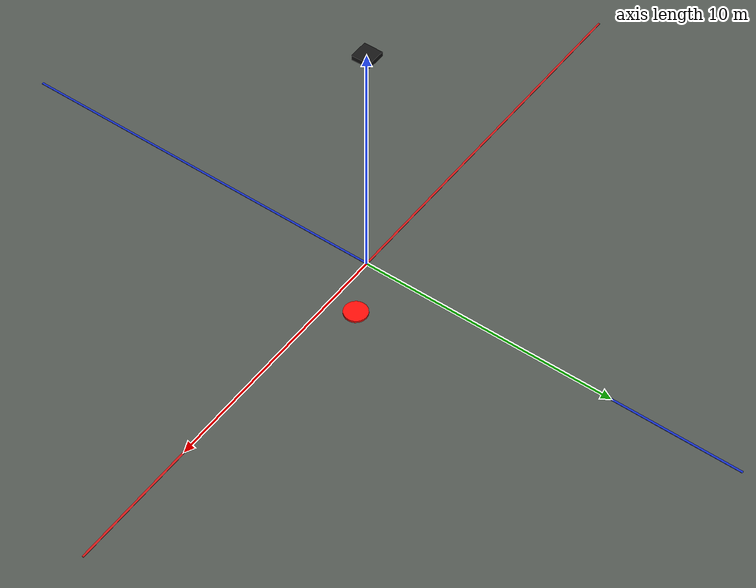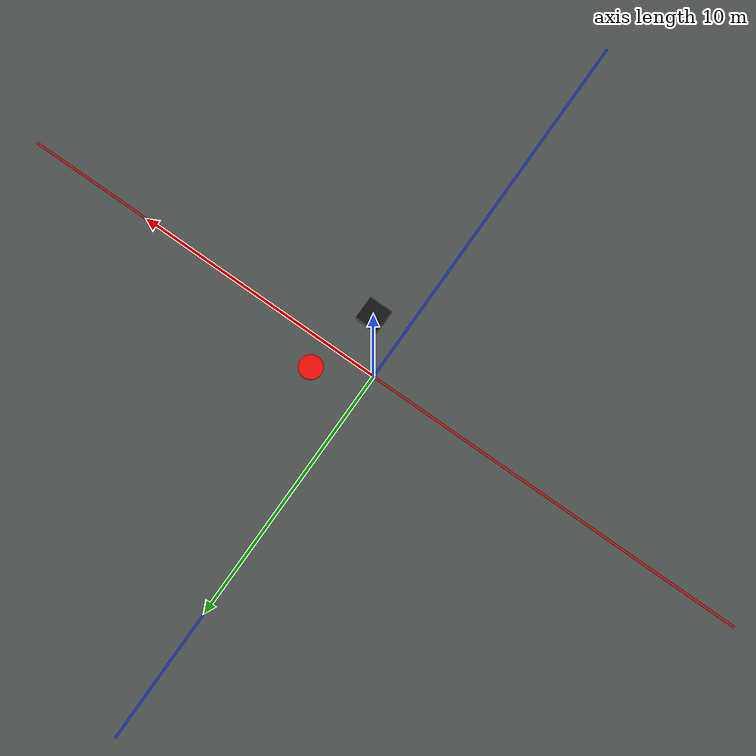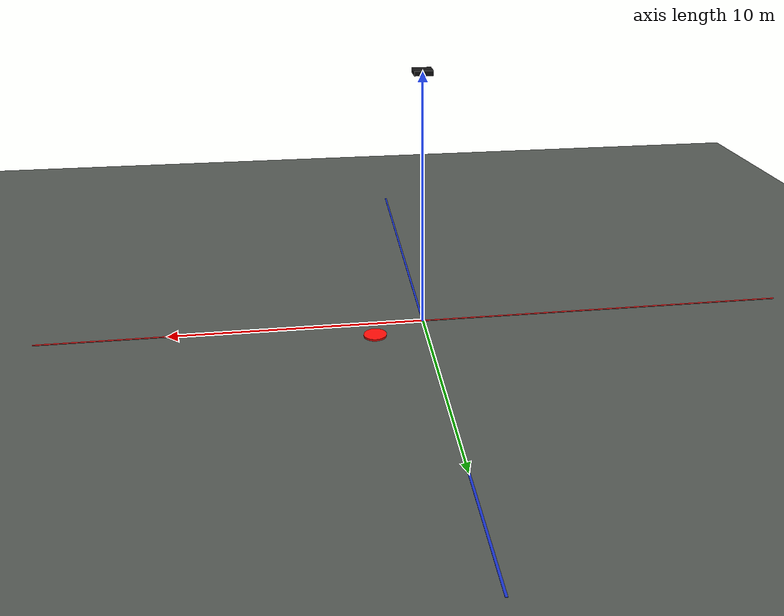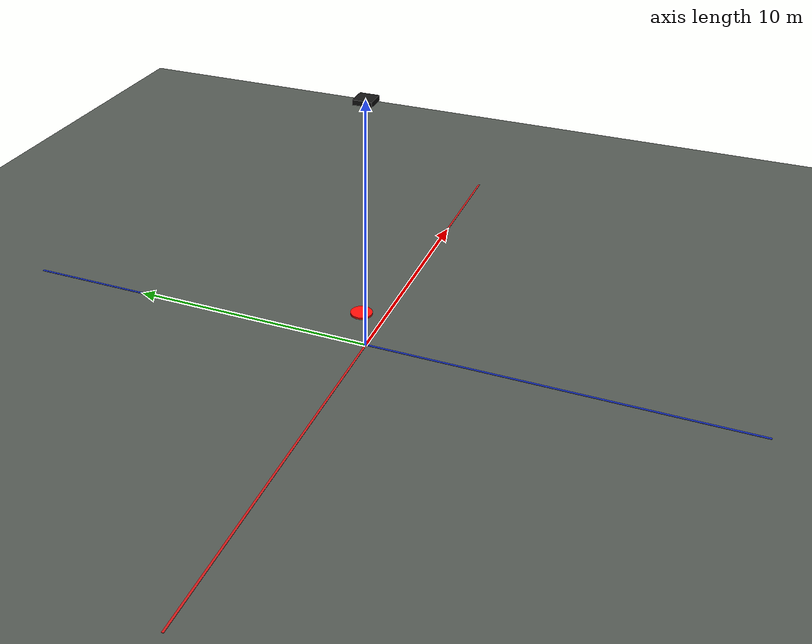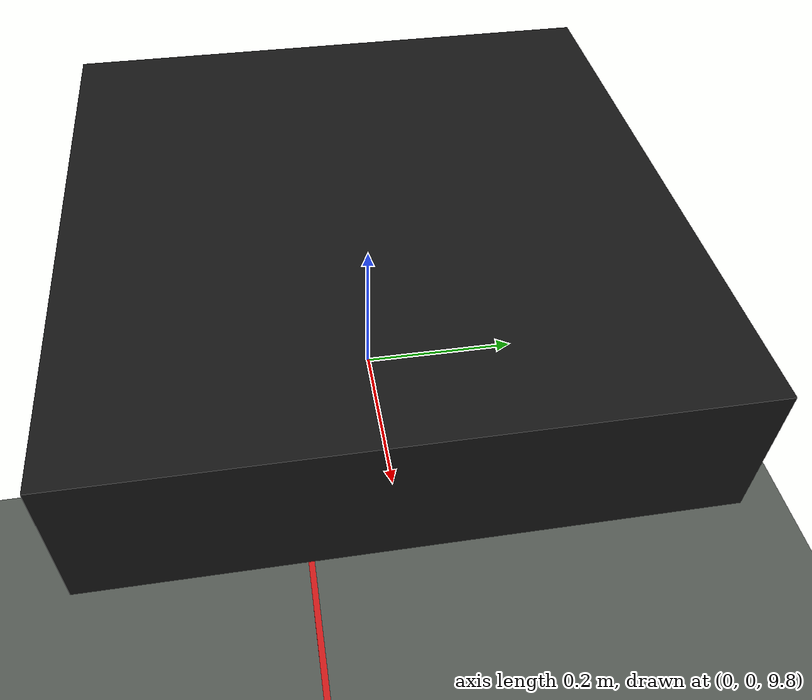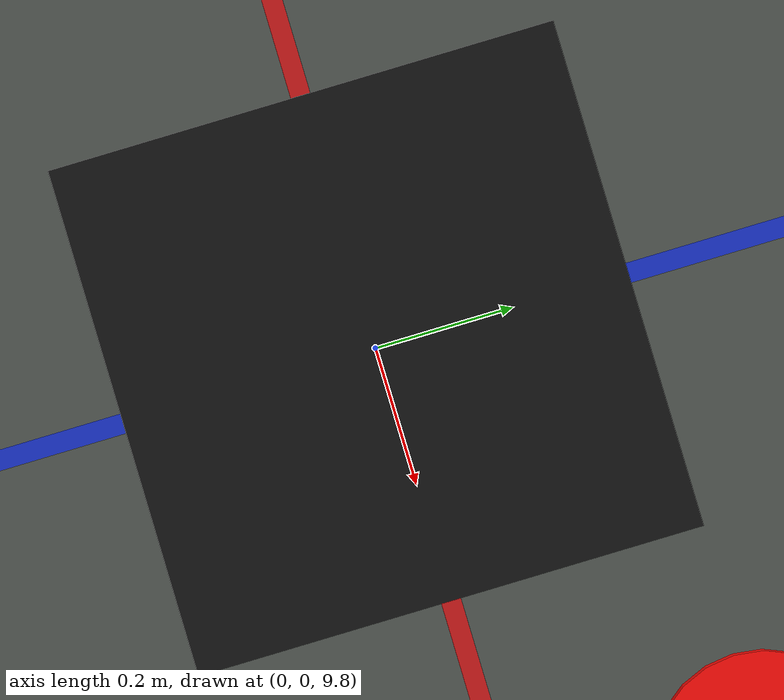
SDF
<?xml version="1.0" ?>
<sdf version="1.9">
  <world name="first_ring_flat_world">
    <gravity>0 0 -9.81</gravity>
    <magnetic_field>6e-06 2.3e-05 -4.2e-05</magnetic_field>
    <atmosphere type="adiabatic"/>

    <plugin filename="gz-sim-physics-system" name="gz::sim::systems::Physics"/>
    <plugin filename="gz-sim-user-commands-system" name="gz::sim::systems::UserCommands"/>
    <plugin filename="gz-sim-scene-broadcaster-system" name="gz::sim::systems::SceneBroadcaster"/>
    <plugin filename="gz-sim-sensors-system" name="gz::sim::systems::Sensors">
      <render_engine>ogre2</render_engine>
    </plugin>

    <light name="sun" type="directional">
      <cast_shadows>true</cast_shadows>
      <pose>0 0 20 0 0 0</pose>
      <diffuse>0.8 0.8 0.8 1</diffuse>
      <specular>0.2 0.2 0.2 1</specular>
      <attenuation>
        <range>1000</range>
        <constant>0.9</constant>
        <linear>0.01</linear>
        <quadratic>0.001</quadratic>
      </attenuation>
      <direction>-0.5 0.2 -1</direction>
    </light>

    <model name="ground_plane">
      <static>true</static>
      <link name="ground_link">
        <collision name="collision">
          <geometry>
            <plane>
              <normal>0 0 1</normal>
              <size>60 60</size>
            </plane>
          </geometry>
        </collision>
        <visual name="visual">
          <geometry>
            <plane>
              <normal>0 0 1</normal>
              <size>60 60</size>
            </plane>
          </geometry>
          <material>
            <ambient>0.32 0.34 0.32 1</ambient>
            <diffuse>0.32 0.34 0.32 1</diffuse>
          </material>
        </visual>
      </link>
    </model>

    <model name="field_reference_grid">
      <static>true</static>
      <link name="grid_link">
        <visual name="x_axis">
          <pose>0 0 0.011 0 0 0</pose>
          <geometry>
            <box>
              <size>30 0.08 0.02</size>
            </box>
          </geometry>
          <material>
            <ambient>0.8 0.1 0.1 1</ambient>
            <diffuse>0.8 0.1 0.1 1</diffuse>
          </material>
        </visual>
        <visual name="y_axis">
          <pose>0 0 0.012 0 0 0</pose>
          <geometry>
            <box>
              <size>0.08 30 0.02</size>
            </box>
          </geometry>
          <material>
            <ambient>0.1 0.2 0.8 1</ambient>
            <diffuse>0.1 0.2 0.8 1</diffuse>
          </material>
        </visual>
      </link>
    </model>

    <model name="downward_uav">
      <static>true</static>
      <pose>0 0 10 0 0 0</pose>
      <link name="base_link">
        <visual name="body">
          <geometry>
            <box>
              <size>0.7 0.7 0.18</size>
            </box>
          </geometry>
          <material>
            <ambient>0.05 0.05 0.05 1</ambient>
            <diffuse>0.08 0.08 0.08 1</diffuse>
          </material>
        </visual>
        <visual name="camera_marker">
          <pose>0 0 -0.16 0 0 0</pose>
          <geometry>
            <cylinder>
              <radius>0.12</radius>
              <length>0.08</length>
            </cylinder>
          </geometry>
          <material>
            <ambient>0.02 0.02 0.02 1</ambient>
            <diffuse>0.02 0.02 0.02 1</diffuse>
          </material>
        </visual>
        <sensor name="downward_camera" type="camera">
          <pose>0 0 -0.2 0 1.57079632679 0</pose>
          <always_on>true</always_on>
          <update_rate>30</update_rate>
          <topic>/camera/image_raw</topic>
          <camera>
            <horizontal_fov>1.3962634</horizontal_fov>
            <image>
              <width>1280</width>
              <height>720</height>
              <format>R8G8B8</format>
            </image>
            <clip>
              <near>0.05</near>
              <far>80</far>
            </clip>
          </camera>
        </sensor>
      </link>
    </model>

    <model name="ground_target">
      <static>true</static>
      <pose>2 1 0.04 0 0 0</pose>
      <link name="target_link">
        <collision name="collision">
          <geometry>
            <cylinder>
              <radius>0.45</radius>
              <length>0.08</length>
            </cylinder>
          </geometry>
        </collision>
        <visual name="visual">
          <geometry>
            <cylinder>
              <radius>0.45</radius>
              <length>0.08</length>
            </cylinder>
          </geometry>
          <material>
            <ambient>1.0 0.05 0.03 1</ambient>
            <diffuse>1.0 0.05 0.03 1</diffuse>
            <specular>0.2 0.02 0.02 1</specular>
          </material>
        </visual>
      </link>
    </model>
  </world>
</sdf>
